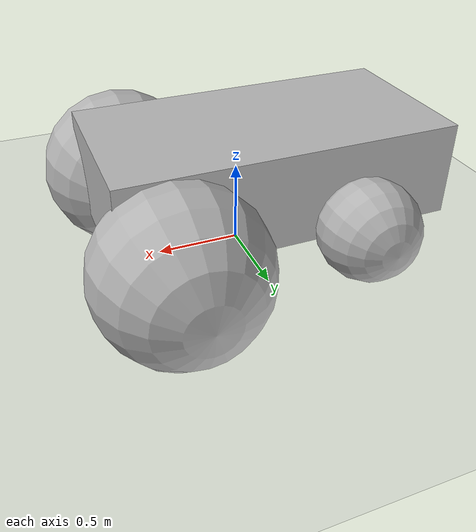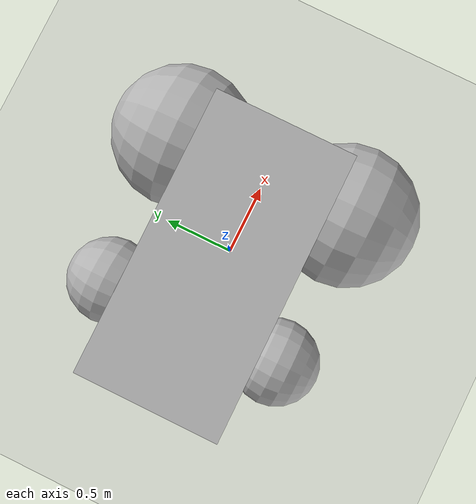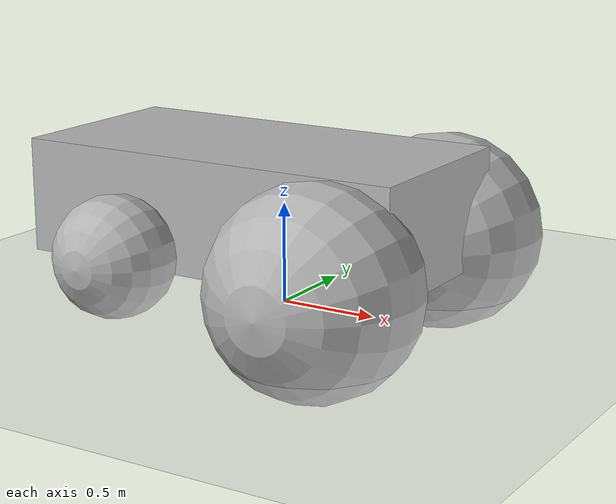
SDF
<?xml version="1.0"?>
  <sdf version="1.6">
    <world name="default">

      <include>
        <uri>model://ground_plane</uri>
      </include>

      <include>
        <uri>model://sun</uri>
      </include>

      <model name='vehicle'>
        <pose>0 0 0.325 0 -0 0</pose>

        <link name='chassis'>
          <pose>-0.151427 -0 0.175 0 -0 0</pose>
          <inertial>
            <mass>1.14395</mass>
            <inertia>
              <ixx>0.126164</ixx>
              <ixy>0</ixy>
              <ixz>0</ixz>
              <iyy>0.416519</iyy>
              <iyz>0</iyz>
              <izz>0.481014</izz>
            </inertia>
          </inertial>
          <visual name='visual'>
            <geometry>
              <box>
                <size>2.01142 1 0.568726</size>
              </box>
            </geometry>
          </visual>
          <collision name='collision'>
            <geometry>
              <box>
                <size>2.01142 1 0.568726</size>
              </box>
            </geometry>
          </collision>
        </link>

        <link name='left_wheel0'>
          <pose>0.554283 0.625029 -0.025 -1.5707 0 0</pose>
          <inertial>
            <mass>2</mass>
            <inertia>
              <ixx>0.145833</ixx>
              <ixy>0</ixy>
              <ixz>0</ixz>
              <iyy>0.145833</iyy>
              <iyz>0</iyz>
              <izz>0.125</izz>
            </inertia>
          </inertial>
          <visual name='visual'>
            <geometry>
              <sphere>
                <radius>0.5</radius>
              </sphere>
            </geometry>
          </visual>
          <collision name='collision'>
            <geometry>
              <sphere>
                <radius>0.5</radius>
              </sphere>
            </geometry>
            <surface>
              <friction>
                <ode>
                  <mu>1</mu>
                  <mu2>1</mu2>
                  <slip1>0</slip1>
                  <slip2>0</slip2>
                </ode>
              </friction>
              <contact>
                <ode>
                  <soft_cfm>0</soft_cfm>
                  <soft_erp>0.2</soft_erp>
                  <kp>1e+13</kp>
                  <kd>1</kd>
                  <max_vel>0.01</max_vel>
                  <min_depth>0.01</min_depth>
                </ode>
              </contact>
            </surface>
          </collision>
        </link>

        <link name='right_wheel0'>
          <pose>0.554282 -0.625029 -0.025 -1.5707 0 0</pose>
          <inertial>
            <mass>2</mass>
            <inertia>
              <ixx>0.145833</ixx>
              <ixy>0</ixy>
              <ixz>0</ixz>
              <iyy>0.145833</iyy>
              <iyz>0</iyz>
              <izz>0.125</izz>
            </inertia>
          </inertial>
          <visual name='visual'>
            <geometry>
              <sphere>
                <radius>0.5</radius>
              </sphere>
            </geometry>
          </visual>
          <collision name='collision'>
            <geometry>
              <sphere>
                <radius>0.5</radius>
              </sphere>
            </geometry>
            <surface>
              <friction>
                <ode>
                  <mu>1</mu>
                  <mu2>1</mu2>
                  <slip1>0</slip1>
                  <slip2>0</slip2>
                </ode>
              </friction>
              <contact>
                <ode>
                  <soft_cfm>0</soft_cfm>
                  <soft_erp>0.2</soft_erp>
                  <kp>1e+13</kp>
                  <kd>1</kd>
                  <max_vel>0.01</max_vel>
                  <min_depth>0.01</min_depth>
                </ode>
              </contact>
            </surface>
          </collision>
        </link>

        <link name='left_wheel1'>
          <pose>-0.554283 0.625029 -0.025 -1.5707 0 0</pose>
          <inertial>
            <mass>2</mass>
            <inertia>
              <ixx>0.145833</ixx>
              <ixy>0</ixy>
              <ixz>0</ixz>
              <iyy>0.145833</iyy>
              <iyz>0</iyz>
              <izz>0.125</izz>
            </inertia>
          </inertial>
          <visual name='visual'>
            <geometry>
              <sphere>
                <radius>0.3</radius>
              </sphere>
            </geometry>
          </visual>
          <collision name='collision'>
            <geometry>
              <sphere>
                <radius>0.3</radius>
              </sphere>
            </geometry>
            <surface>
              <friction>
                <ode>
                  <mu>1</mu>
                  <mu2>1</mu2>
                  <slip1>0</slip1>
                  <slip2>0</slip2>
                </ode>
              </friction>
              <contact>
                <ode>
                  <soft_cfm>0</soft_cfm>
                  <soft_erp>0.2</soft_erp>
                  <kp>1e+13</kp>
                  <kd>1</kd>
                  <max_vel>0.01</max_vel>
                  <min_depth>0.01</min_depth>
                </ode>
              </contact>
            </surface>
          </collision>
        </link>

        <link name='right_wheel1'>
          <pose>-0.554282 -0.625029 -0.025 -1.5707 0 0</pose>
          <inertial>
            <mass>2</mass>
            <inertia>
              <ixx>0.145833</ixx>
              <ixy>0</ixy>
              <ixz>0</ixz>
              <iyy>0.145833</iyy>
              <iyz>0</iyz>
              <izz>0.125</izz>
            </inertia>
          </inertial>
          <visual name='visual'>
            <geometry>
              <sphere>
                <radius>0.3</radius>
              </sphere>
            </geometry>
          </visual>
          <collision name='collision'>
            <geometry>
              <sphere>
                <radius>0.3</radius>
              </sphere>
            </geometry>
            <surface>
              <friction>
                <ode>
                  <mu>1</mu>
                  <mu2>1</mu2>
                  <slip1>0</slip1>
                  <slip2>0</slip2>
                </ode>
              </friction>
              <contact>
                <ode>
                  <soft_cfm>0</soft_cfm>
                  <soft_erp>0.2</soft_erp>
                  <kp>1e+13</kp>
                  <kd>1</kd>
                  <max_vel>0.01</max_vel>
                  <min_depth>0.01</min_depth>
                </ode>
              </contact>
            </surface>
          </collision>
        </link>

        <link name='caster'>
          <pose>-0.957138 -0 -0.125 0 -0 0</pose>
          <inertial>
            <mass>1</mass>
            <inertia>
              <ixx>0.1</ixx>
              <ixy>0</ixy>
              <ixz>0</ixz>
              <iyy>0.1</iyy>
              <iyz>0</iyz>
              <izz>0.1</izz>
            </inertia>
          </inertial>
          <visual name='visual'>
            <geometry>
              <sphere>
                <radius>0.2</radius>
              </sphere>
            </geometry>
          </visual>
          <collision name='collision'>
            <geometry>
              <sphere>
                <radius>0.2</radius>
              </sphere>
            </geometry>
          </collision>
        </link>

        <joint name='left_wheel_joint0' type='revolute'>
          <parent>chassis</parent>
          <child>left_wheel0</child>
          <axis>
            <xyz>0 0 1</xyz>
            <limit>
              <lower>-1.79769e+308</lower>
              <upper>1.79769e+308</upper>
            </limit>
          </axis>
        </joint>

        <joint name='right_wheel_joint0' type='revolute'>
          <parent>chassis</parent>
          <child>right_wheel0</child>
          <axis>
            <xyz>0 0 1</xyz>
            <limit>
              <lower>-1.79769e+308</lower>
              <upper>1.79769e+308</upper>
            </limit>
          </axis>
        </joint>

        <joint name='left_wheel_joint1' type='revolute'>
          <parent>chassis</parent>
          <child>left_wheel1</child>
          <axis>
            <xyz>0 0 1</xyz>
            <limit>
              <lower>-1.79769e+308</lower>
              <upper>1.79769e+308</upper>
            </limit>
          </axis>
        </joint>

        <joint name='right_wheel_joint1' type='revolute'>
          <parent>chassis</parent>
          <child>right_wheel1</child>
          <axis>
            <xyz>0 0 1</xyz>
            <limit>
              <lower>-1.79769e+308</lower>
              <upper>1.79769e+308</upper>
            </limit>
          </axis>
        </joint>

        <joint name='caster_wheel' type='ball'>
          <parent>chassis</parent>
          <child>caster</child>
        </joint>

        <plugin name='skid_steer_drive' filename='libgazebo_ros_diff_drive.so'>

          <ros>
            <namespace>/demo</namespace>
            <remapping>cmd_vel:=cmd_demo</remapping>
            <remapping>odom:=odom_demo</remapping>
          </ros>

          <!-- Number of wheel pairs -->
          <num_wheel_pairs>2</num_wheel_pairs>

          <!-- wheels0 -->
          <left_joint>left_wheel_joint0</left_joint>
          <right_joint>right_wheel_joint0</right_joint>

          <!-- wheels1-->
          <left_joint>left_wheel_joint1</left_joint>
          <right_joint>right_wheel_joint1</right_joint>

          <!-- kinematics -->
          <wheel_separation>1.25</wheel_separation>
          <wheel_separation>1.25</wheel_separation>

          <wheel_diameter>1.0</wheel_diameter>
          <wheel_diameter>0.6</wheel_diameter>

          <!-- limits -->
          <max_wheel_torque>20</max_wheel_torque>
          <max_wheel_acceleration>1.0</max_wheel_acceleration>

          <!-- output -->
          <publish_odom>true</publish_odom>
          <publish_odom_tf>true</publish_odom_tf>
          <publish_wheel_tf>true</publish_wheel_tf>

          <odometry_frame>odom_demo</odometry_frame>
          <robot_base_frame>chassis</robot_base_frame>

        </plugin>

      </model>

    </world>
  </sdf>
